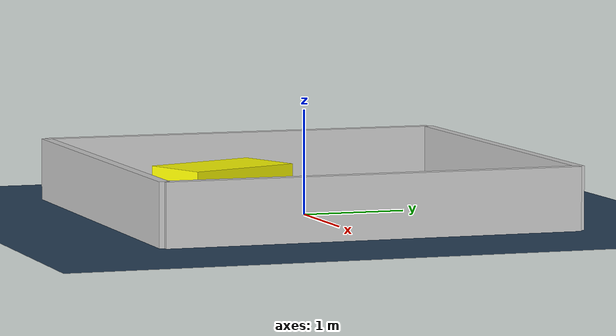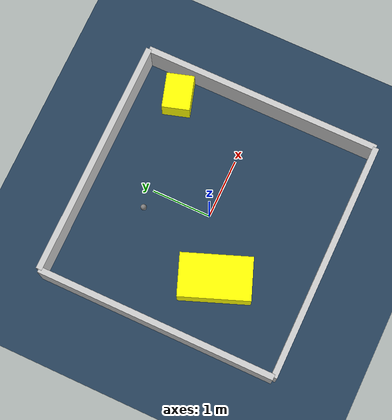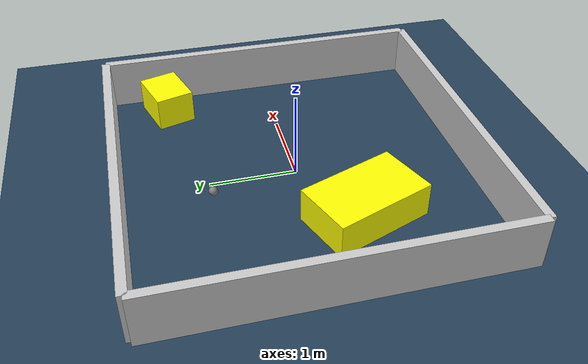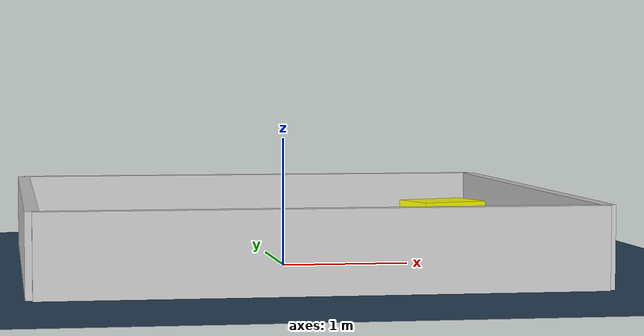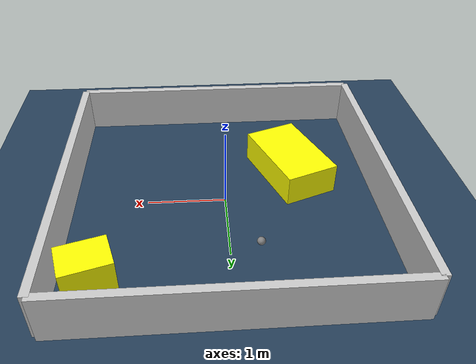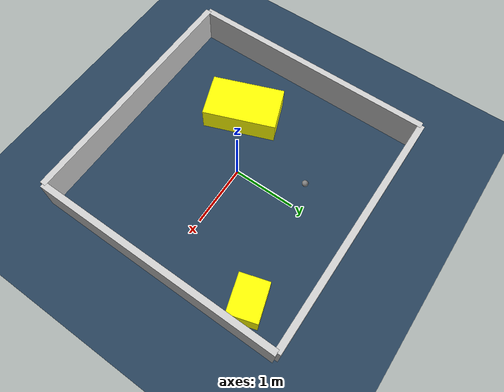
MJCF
<?xml version="1.0" ?>
<mujoco model="generated_environment">
  <option timestep="0.01" integrator="RK4" cone="elliptic"/>
  <default>
    <geom density="1"/>
  </default>
  <asset>
    <texture builtin="gradient" height="3072" rgb1="0.3 0.5 0.7" rgb2="0 0 0" type="skybox" width="512"/>
    <texture builtin="checker" height="300" mark="edge" markrgb="0.8 0.8 0.8" name="groundplane" rgb1="0.2 0.3 0.4" rgb2="0.1 0.2 0.3" type="2d" width="300"/>
    <material name="groundplane" reflectance="0.2" texrepeat="5 5" texture="groundplane" texuniform="true"/>
    <material name="robot" rgba="0.0 1.0 0.0 1"/>
  </asset>
  <worldbody>
    <light dir="0 0 -1" directional="true" pos="0 0 1.5"/>
    <geom condim="4" friction="1.0 0.005 0.001" material="groundplane" name="floor" size="0 0 0.05" type="plane"/>
    <body name="walls">
      <geom name="wall_1" condim="4" pos="-2.0 0.0 0.3" rgba="0.800000011920929 0.800000011920929 0.800000011920929 1.0" size="0.05 2.0 0.3" type="box"/>
      <geom name="wall_2" condim="4" pos="2.0 0.0 0.3" rgba="0.800000011920929 0.800000011920929 0.800000011920929 1.0" size="0.05 2.0 0.3" type="box"/>
      <geom name="wall_3" condim="4" pos="0.0 -2.0 0.3" rgba="0.800000011920929 0.800000011920929 0.800000011920929 1.0" size="2.0 0.05 0.3" type="box"/>
      <geom name="wall_4" condim="4" pos="0.0 2.0 0.3" rgba="0.800000011920929 0.800000011920929 0.800000011920929 1.0" size="2.0 0.05 0.3" type="box"/>
    </body>
    <body name="robot">
      <joint name="joint_x" type="slide" pos="0 0 0" axis="1 0 0"/>
      <joint name="joint_y" type="slide" pos="0 0 0" axis="0 1 0"/>
      <geom name="robot" type="sphere" pos="-0.34801780374613944 1.0033900756238792 0.2" size="0.05" mass="5." friction="1.0 0.005 0.0001" condim="4"/>
      <site name="sensor_ball"/>
    </body>
    <body name="obstacle_1_movable">
      <geom name="obstacle_1_movable" condim="4" pos="1.5991924953365706 1.2988527425865497 0.2" euler="0 0 106.70485776148064" friction="1.0 0.005 0.001" rgba="1 1 0 1" size="0.2306377851399264 0.2954181568034598 0.2" type="box" mass="0.1"/>
      <joint type="free"/>
    </body>
    <body name="obstacle_2_movable">
      <geom name="obstacle_2_movable" condim="4" pos="-0.9234035292790386 -0.5267710212307455 0.2" euler="0 0 20.839989550772835" friction="1.0 0.005 0.001" rgba="1 1 0 1" size="0.35578036836392374 0.5878627519572914 0.2" type="box" mass="0.1"/>
      <joint type="free"/>
    </body>
  </worldbody>
  <actuator>
    <motor name="actuator_x" joint="joint_x" gear="1" ctrlrange="-1 1"/>
    <motor name="actuator_y" joint="joint_y" gear="1" ctrlrange="-1 1"/>
  </actuator>
</mujoco>
